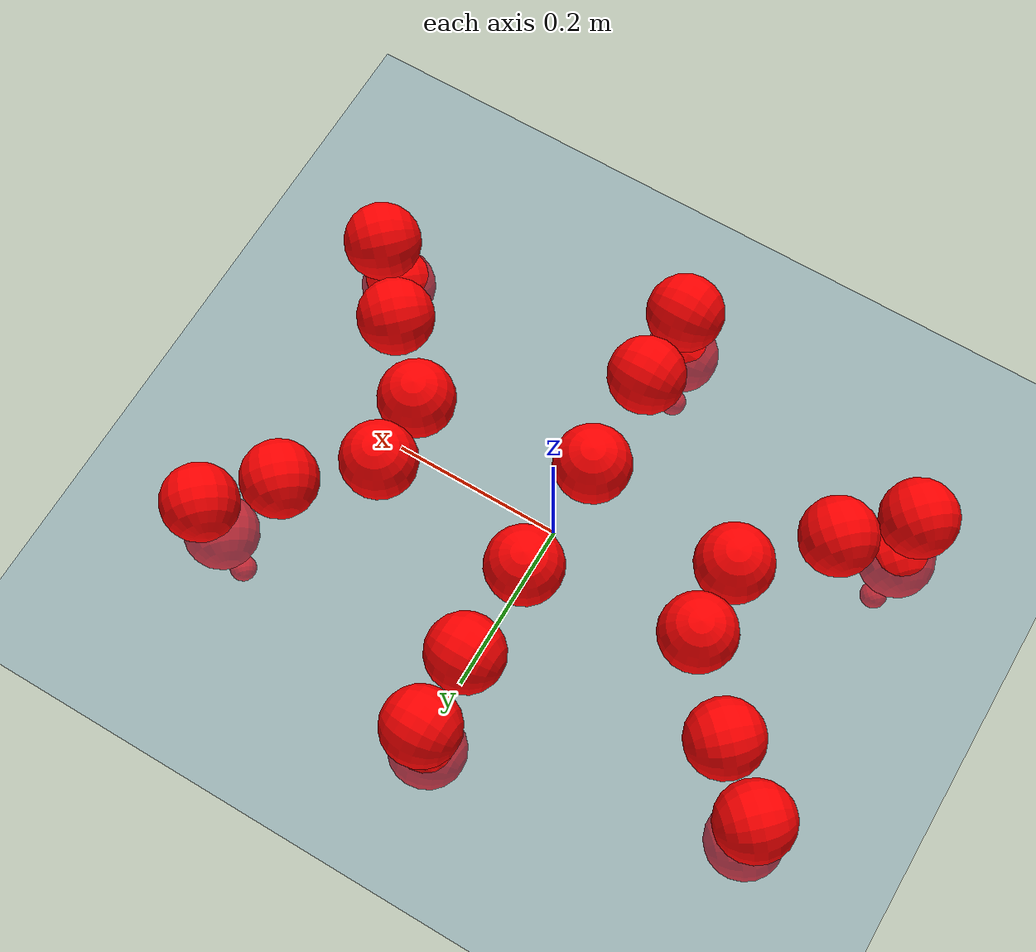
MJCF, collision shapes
<mujoco model="Golem">
  <compiler angle="radian" assetdir="assets" balanceinertia="true" inertiafromgeom="false"/>

  <option timestep="0.005" density="1.2" viscosity="2e-05"/>

  <size nkey="1"/>

  <visual>
    <quality shadowsize="8192"/>
    <map shadowclip="0.5"/>
  </visual>

  <default>
    <default class="/">
      <joint armature="0.01" damping="0.01" frictionloss="0.01"/>
      <geom contype="0" conaffinity="0" group="1" solref="-1000 -80"/>
      <site size="0.01 0.005 0.005" group="5"/>
      <general forcelimited="true" biastype="affine" gainprm="25" biasprm="0 -25 -0.5"/>
      <default class="visual">
        <geom type="mesh" group="2"/>
      </default>
      <default class="collision">
        <geom group="3"/>
      </default>
      <default class="foot">
        <geom size="0.01 0 0" condim="6" group="4" priority="1" solimp="0.015 1 0.01"/>
      </default>
      <default class="reward_collision_sphere">
        <geom group="5" rgba="1 0 0 1"/>
      </default>
    </default>
  </default>

  <asset>
    <texture type="skybox" colorspace="auto" name="//unnamed_texture_0" builtin="gradient" rgb1="0.95 0.95 0.95" rgb2="0.95 0.95 0.95" width="100" height="600"/>
    <texture type="2d" colorspace="auto" name="texplane" builtin="checker" rgb1="0.345 0.575 0.748" rgb2="0.345 0.575 0.748" markrgb="1 1 1" width="512" height="512"/>
    <material name="MatPlane" class="/" texture="texplane" texuniform="true" texrepeat="2 2" specular="0.9"/>
    <mesh name="body" class="/" file="body.stl" scale="0.001 0.001 0.001"/>
    <mesh name="coxa" class="/" file="coxa.stl" scale="0.001 0.001 0.001"/>
    <mesh name="femur" class="/" file="femur.stl" scale="0.001 0.001 0.001"/>
    <mesh name="tibia" class="/" file="tibia.stl" scale="0.001 0.001 0.001"/>
    <mesh name="tarsus" class="/" file="tarsus.stl" scale="0.001 0.001 0.001"/>
  </asset>

  <worldbody>
    <geom name="floor" class="/" size="100 100 0.125" type="plane" group="0" material="MatPlane"/>
    <light name="toplight_shadow" class="/" pos="0 0 5" dir="0.0990148 0.0990148 -0.990148" type="directional" ambient="0.04 0.04 0.04" diffuse="0.55 0.55 0.55" specular="0.12 0.12 0.12"/>
    <light name="toplight_fill" class="/" pos="0 0 5" dir="0.0990148 0.0990148 -0.990148" type="directional" castshadow="false" ambient="0.04 0.04 0.04" diffuse="0.3 0.3 0.3" specular="0.08 0.08 0.08"/>
    <body name="trunk" pos="-0.000196814 -0.00146898 0.0039512" quat="0.999996 0.000905064 -0.00156841 -0.00231092">
      <inertial pos="-0.00114558 0.00125251 -0.00552349" quat="0.999999 -0.00078904 0.00133096 -1.96544e-05" mass="5.53878" diaginertia="0.0315727 0.00393991 0.0282266"/>
      <joint name="//unnamed_joint_0" type="free"/>
      <geom name="//unnamed_geom_1" class="/" pos="0 0 0.0787894" quat="1 0 0 0" type="mesh" rgba="0.9 0.9 0.9 1" mesh="body"/>
      <site name="imu" class="/" pos="0.161429 -0.0312034 0.0775812" size="0.0110345"/>
      <camera name="track" class="/" pos="0 -1.6426 0" quat="0.707107 0.707107 0 0" mode="trackcom"/>
      <camera name="ego_camera" class="/" pos="0.163535 0 0.123108" quat="-0.5 -0.5 0.5 0.5"/>
      <body name="coxa_RR" pos="-0.221974 -0.0687928 0.0793109" quat="0.382677 0.00339597 0.00329577 -0.92387">
        <inertial pos="-0.00513941 -0.000148867 0.00296863" quat="0.99997 0.00683288 0.00331691 0.00141363" mass="0.244996" diaginertia="0.0313152 0.00337977 0.0246495"/>
        <joint name="coxa_joint_RR" class="/" pos="0 0 0" axis="0.00568571 0.00566715 -0.999968" range="-3.16778 3.14005" armature="0.0122211" damping="0.00709581" frictionloss="0.0105636"/>
        <geom name="//unnamed_geom_2" class="/" type="mesh" rgba="0.2 0.2 0.2 1" mesh="coxa"/>
        <geom name="//unnamed_geom_3" class="reward_collision_sphere" size="0.044138" pos="-0.0377389 0 0"/>
        <body name="femur_RR" pos="0.0784292 0.00198577 0.000235603" quat="0.501867 -0.500035 0.501388 0.496694">
          <inertial pos="-0.00017257 -0.00883129 -0.00263753" quat="0.999824 -0.0105925 0.0141069 0.00642468" mass="0.299465" diaginertia="0.0328167 0.00415718 0.0309748"/>
          <joint name="femur_joint_RR" class="/" pos="0 0 0" axis="-0.00334475 -0.00598935 -0.999976" stiffness="0.00562252" range="-3.14548 3.14569" armature="0.00775518" damping="0.0110461" frictionloss="0.0108246"/>
          <geom name="//unnamed_geom_4" class="/" type="mesh" rgba="0.9 0.9 0.9 1" mesh="femur"/>
          <geom name="//unnamed_geom_5" class="reward_collision_sphere" size="0.044138"/>
          <body name="tibia_RR" pos="0.00375761 -0.0906044 0.000206741" quat="-6.66035e-05 1 -0.000611693 0.000324674">
            <inertial pos="-0.000771566 -0.00792489 0.00125268" quat="0.999999 0.000863289 0.000229856 0.000917376" mass="0.27838" diaginertia="0.0325717 0.00388768 0.0292218"/>
            <joint name="tibia_joint_RR" class="/" pos="0 0 0" axis="-0.0266797 -0.0262695 0.999299" stiffness="0.0245206" range="-3.29856 3.15704" armature="0.0128195" damping="0.0354635" frictionloss="0.00566377"/>
            <geom name="//unnamed_geom_6" class="/" type="mesh" rgba="0.2 0.2 0.2 1" mesh="tibia"/>
            <geom name="//unnamed_geom_7" class="reward_collision_sphere" size="0.044138"/>
            <body name="tarsus_RR" pos="0.109597 -0.00529252 0.00813496" quat="0.999999 0.000100049 0.000518225 0.00123571">
              <inertial pos="0.0737902 -0.00104904 -0.00461503" quat="0.490284 0.503485 0.502735 0.50337" mass="0.292374" diaginertia="0.0348854 0.0040556 0.02705"/>
              <joint name="tarsus_joint_RR" class="/" pos="0 0 0" axis="-0.0116567 -0.0158839 0.999806" range="-3.08173 3.09939" armature="0.0113392" damping="0" frictionloss="0.0120188"/>
              <geom name="//unnamed_geom_8" class="/" type="mesh" rgba="0.9 0.9 0.9 1" mesh="tarsus"/>
              <geom name="foot_1" class="foot" size="0.0136466" pos="0.140892 0 0" quat="0 -0.707107 0 0.707107"/>
              <geom name="//unnamed_geom_10" class="reward_collision_sphere" size="0.044138"/>
              <geom name="//unnamed_geom_11" class="reward_collision_sphere" size="0.0165517" pos="0.135231 0 0"/>
              <site name="foot_1" class="foot" pos="0.140892 0 0" quat="0 -0.707107 0 0.707107" size="0.0110345"/>
            </body>
          </body>
        </body>
      </body>
      <body name="coxa_RM" pos="-0.00930462 -0.101256 0.0774096" quat="0.707208 2.12311e-05 5.61477e-05 -0.707006">
        <inertial pos="0.00206243 -0.00018753 0.00639168" quat="0.998975 0.0167353 -0.0238278 -0.0346638" mass="0.2446" diaginertia="0.0285838 0.00297199 0.0233516"/>
        <joint name="coxa_joint_RM" class="/" pos="0 0 0" axis="-0.0184193 0.0379885 -0.999108" stiffness="0.0103817" range="-3.12754 3.19091" armature="0.010867" damping="0.0198774" frictionloss="0.00878215"/>
        <geom name="//unnamed_geom_12" class="/" type="mesh" rgba="0.2 0.2 0.2 1" mesh="coxa"/>
        <geom name="//unnamed_geom_13" class="reward_collision_sphere" size="0.044138" pos="-0.0377389 0 0"/>
        <body name="femur_RM" pos="0.0819962 0.00121434 0.00283266" quat="0.500063 -0.499269 0.500978 0.499688">
          <inertial pos="0.000955169 -0.00489428 0.0011231" quat="0.999972 -0.000693185 -0.00385746 -0.006363" mass="0.260339" diaginertia="0.0341747 0.00366585 0.0291506"/>
          <joint name="femur_joint_RM" class="/" pos="0 0 0" axis="0.00177108 -0.00443519 -0.999989" stiffness="0.0277347" range="-3.25813 3.09258" armature="0.00843621" damping="0.0103505" frictionloss="0.0071163"/>
          <geom name="//unnamed_geom_14" class="/" type="mesh" rgba="0.9 0.9 0.9 1" mesh="femur"/>
          <geom name="//unnamed_geom_15" class="reward_collision_sphere" size="0.044138"/>
          <body name="tibia_RM" pos="-0.00133102 -0.0875854 0.000507074" quat="0.00116903 0.999999 -2.01893e-05 -4.06256e-05">
            <inertial pos="0.00230018 0.000105189 -0.00539553" quat="0.999984 -0.00239463 -0.00244538 -0.0046122" mass="0.243428" diaginertia="0.0309029 0.00371892 0.0292267"/>
            <joint name="tibia_joint_RM" class="/" pos="0 0 0" axis="-0.0354082 -0.0155532 0.999252" range="-3.16644 3.05083" armature="0.015512" damping="0.0140043" frictionloss="0.00673114"/>
            <geom name="//unnamed_geom_16" class="/" type="mesh" rgba="0.2 0.2 0.2 1" mesh="tibia"/>
            <geom name="//unnamed_geom_17" class="reward_collision_sphere" size="0.044138"/>
            <body name="tarsus_RM" pos="0.120489 0.00721045 0.000884" quat="0.999997 0.000155205 -0.000317295 -0.00232041">
              <inertial pos="0.0771 -0.000905086 0.00147504" quat="0.498492 0.497329 0.497503 0.506615" mass="0.226708" diaginertia="0.0277496 0.00336929 0.0255768"/>
              <joint name="tarsus_joint_RM" class="/" pos="0 0 0" axis="-0.00475756 0.00303632 0.999984" range="-3.1558 3.11806" armature="0.0120823" damping="0" frictionloss="0.0114614"/>
              <geom name="//unnamed_geom_18" class="/" type="mesh" rgba="0.9 0.9 0.9 1" mesh="tarsus"/>
              <geom name="foot_2" class="foot" size="0.0124989" pos="0.140892 0 0" quat="0 -0.707107 0 0.707107"/>
              <geom name="//unnamed_geom_20" class="reward_collision_sphere" size="0.044138"/>
              <geom name="//unnamed_geom_21" class="reward_collision_sphere" size="0.0165517" pos="0.135231 0 0"/>
              <site name="foot_2" class="foot" pos="0.140892 0 0" quat="0 -0.707107 0 0.707107" size="0.0110345"/>
            </body>
          </body>
        </body>
      </body>
      <body name="coxa_RF" pos="0.222931 -0.0594005 0.0730727" quat="0.923874 0.000385201 -0.000364952 -0.382696">
        <inertial pos="0.00813069 0.00237142 0.00534158" quat="0.999831 -0.0183618 -0.000494236 0.000539143" mass="0.260854" diaginertia="0.0273626 0.00334192 0.0242337"/>
        <joint name="coxa_joint_RF" class="/" pos="0 0 0" axis="-0.00541254 -0.00242667 -0.999982" stiffness="0.0296196" range="-3.09618 3.21435" armature="0.010324" damping="0" frictionloss="0.00702396"/>
        <geom name="//unnamed_geom_22" class="/" type="mesh" rgba="0.2 0.2 0.2 1" mesh="coxa"/>
        <geom name="//unnamed_geom_23" class="reward_collision_sphere" size="0.044138" pos="-0.0377389 0 0"/>
        <body name="femur_RF" pos="0.0670501 0.000738136 -0.00355514" quat="0.498857 -0.502545 0.499207 0.499382">
          <inertial pos="0.00166744 0.00143819 -0.00055672" quat="0.999903 0.008808 0.0102772 -0.00320047" mass="0.263253" diaginertia="0.0335815 0.00381907 0.0296982"/>
          <joint name="femur_joint_RF" class="/" pos="0 0 0" axis="0.00177254 0.00171012 -0.999997" range="-3.17685 3.13774" armature="0.0116784" damping="0.0166477" frictionloss="0.0120496"/>
          <geom name="//unnamed_geom_24" class="/" type="mesh" rgba="0.9 0.9 0.9 1" mesh="femur"/>
          <geom name="//unnamed_geom_25" class="reward_collision_sphere" size="0.044138"/>
          <body name="tibia_RF" pos="-0.00981721 -0.0906182 -0.00611365" quat="0.000323235 1 -0.000271738 -0.000199296">
            <inertial pos="-0.00115881 0.00755045 0.00574167" quat="0.999368 0.00889808 -0.0157714 0.030595" mass="0.294901" diaginertia="0.0355911 0.00413158 0.0282237"/>
            <joint name="tibia_joint_RF" class="/" pos="0 0 0" axis="0.0354276 -0.00278323 0.999368" stiffness="0.0493429" range="-3.09424 3.17258" armature="0.0122072" damping="0.0384686" frictionloss="0.0128852"/>
            <geom name="//unnamed_geom_26" class="/" type="mesh" rgba="0.2 0.2 0.2 1" mesh="tibia"/>
            <geom name="//unnamed_geom_27" class="reward_collision_sphere" size="0.044138"/>
            <body name="tarsus_RF" pos="0.1092 0.000154072 0.00851462" quat="1 -1.34719e-05 8.90358e-06 8.48065e-07">
              <inertial pos="0.0763545 0.0013995 -0.00217975" quat="0.501692 0.499542 0.501433 0.497321" mass="0.282353" diaginertia="0.0330505 0.00412723 0.0295569"/>
              <joint name="tarsus_joint_RF" class="/" pos="0 0 0" axis="-0.0451285 -0.00773451 0.998951" range="-3.17278 3.11924" armature="0.0113811" damping="0.0101882" frictionloss="0.00937107"/>
              <geom name="//unnamed_geom_28" class="/" type="mesh" rgba="0.9 0.9 0.9 1" mesh="tarsus"/>
              <geom name="foot_3" class="foot" size="0.010195" pos="0.140892 0 0" quat="0 -0.707107 0 0.707107"/>
              <geom name="//unnamed_geom_30" class="reward_collision_sphere" size="0.044138"/>
              <geom name="//unnamed_geom_31" class="reward_collision_sphere" size="0.0165517" pos="0.135231 0 0"/>
              <site name="foot_3" class="foot" pos="0.140892 0 0" quat="0 -0.707107 0 0.707107" size="0.0110345"/>
            </body>
          </body>
        </body>
      </body>
      <body name="coxa_LR" pos="-0.225188 0.0679121 0.0707675" quat="0.383506 -0.00289295 -0.00132724 0.923533">
        <inertial pos="0.00231374 -0.00595448 0.00660554" quat="0.999985 0.00511366 -0.00110378 0.00156969" mass="0.265967" diaginertia="0.0320665 0.00399632 0.0288862"/>
        <joint name="coxa_joint_LR" class="/" pos="0 0 0" axis="-0.00138461 -0.0262008 -0.999656" range="-3.10273 2.99116" armature="0.0106856" damping="0.0205175" frictionloss="0.00839582"/>
        <geom name="//unnamed_geom_32" class="/" type="mesh" rgba="0.2 0.2 0.2 1" mesh="coxa"/>
        <geom name="//unnamed_geom_33" class="reward_collision_sphere" size="0.044138" pos="-0.0377389 0 0"/>
        <body name="femur_LR" pos="0.0764736 -0.00327245 -0.00438734" quat="0.500341 -0.499767 0.499642 0.500249">
          <inertial pos="0.0019187 -0.00470947 -0.000354447" quat="0.999156 0.017068 -0.0176066 -0.0329489" mass="0.272763" diaginertia="0.0291974 0.00371191 0.0294394"/>
          <joint name="femur_joint_LR" class="/" pos="0 0 0" axis="-0.0242 -0.044859 0.9987" range="-3.09701 3.11851" armature="0.00612272" damping="0.0024818" frictionloss="0.0119311"/>
          <geom name="//unnamed_geom_34" class="/" type="mesh" rgba="0.9 0.9 0.9 1" mesh="femur"/>
          <geom name="//unnamed_geom_35" class="reward_collision_sphere" size="0.044138"/>
          <body name="tibia_LR" pos="-0.0064401 -0.0894962 0.00496465" quat="-0.000191128 1 0.000210051 -4.17008e-05">
            <inertial pos="0.00247986 -0.000554437 -0.0056111" quat="0.999748 0.0175917 0.00134072 0.0138933" mass="0.247082" diaginertia="0.0322718 0.00368606 0.029041"/>
            <joint name="tibia_joint_LR" class="/" pos="0 0 0" axis="-0.00961735 0.000299484 -0.999954" stiffness="0.0067713" range="-3.30443 3.04155" armature="0.0144573" damping="0.017886" frictionloss="0.0109005"/>
            <geom name="//unnamed_geom_36" class="/" type="mesh" rgba="0.2 0.2 0.2 1" mesh="tibia"/>
            <geom name="//unnamed_geom_37" class="reward_collision_sphere" size="0.044138"/>
            <body name="tarsus_LR" pos="0.11223 0.0029634 -0.00132481" quat="1 6.59215e-05 0.000102998 -0.000300744">
              <inertial pos="0.0745793 0.00683383 0.00129356" quat="0.502428 0.498738 0.499204 0.499622" mass="0.295736" diaginertia="0.0315565 0.00330424 0.0274722"/>
              <joint name="tarsus_joint_LR" class="/" pos="0 0 0" axis="0.00305213 0.0041363 -0.999987" range="-3.16027 3.06896" armature="0.0106013" damping="0.0188785" frictionloss="0.0128757"/>
              <geom name="//unnamed_geom_38" class="/" type="mesh" rgba="0.9 0.9 0.9 1" mesh="tarsus"/>
              <geom name="foot_4" class="foot" size="0.00966546" pos="0.140892 0 0" quat="0.707107 0 -0.707107 0"/>
              <geom name="//unnamed_geom_40" class="reward_collision_sphere" size="0.044138"/>
              <geom name="//unnamed_geom_41" class="reward_collision_sphere" size="0.0165517" pos="0.135231 0 0"/>
              <site name="foot_4" class="foot" pos="0.140892 0 0" quat="0.707107 0 -0.707107 0" size="0.0110345"/>
            </body>
          </body>
        </body>
      </body>
      <body name="coxa_LM" pos="-0.00586984 0.110823 0.0786657" quat="0.70707 0.000301258 7.93538e-06 0.707143">
        <inertial pos="0.00132034 0.00139004 0.00798546" quat="0.99998 0.00488023 -0.00407283 0.00068827" mass="0.273513" diaginertia="0.0308315 0.00369478 0.0283337"/>
        <joint name="coxa_joint_LM" class="/" pos="0 0 0" axis="-0.0136864 -0.00219842 -0.999904" stiffness="0.00836006" range="-3.16715 3.09661" armature="0.0107651" damping="0.0336944" frictionloss="0.0112823"/>
        <geom name="//unnamed_geom_42" class="/" type="mesh" rgba="0.2 0.2 0.2 1" mesh="coxa"/>
        <geom name="//unnamed_geom_43" class="reward_collision_sphere" size="0.044138" pos="-0.0377389 0 0"/>
        <body name="femur_LM" pos="0.0754545 -0.00294884 0.000717075" quat="0.498918 -0.500624 0.500361 0.500095">
          <inertial pos="0.00491276 -0.00130174 0.00941387" quat="0.999671 -0.00248923 -0.0189955 -0.0170453" mass="0.279861" diaginertia="0.0321368 0.00391133 0.0296271"/>
          <joint name="femur_joint_LM" class="/" pos="0 0 0" axis="-0.0102145 0.0103062 0.999895" range="-3.12893 3.31954" armature="0.012788" damping="0.0360282" frictionloss="0.0144973"/>
          <geom name="//unnamed_geom_44" class="/" type="mesh" rgba="0.9 0.9 0.9 1" mesh="femur"/>
          <geom name="//unnamed_geom_45" class="reward_collision_sphere" size="0.044138"/>
          <body name="tibia_LM" pos="0.000842521 -0.0887463 0.00170504" quat="0.000770893 0.999999 -0.000391686 -0.000726127">
            <inertial pos="-0.00174508 0.00172757 -0.000112997" quat="0.999975 -0.00435804 0.00434021 0.00354462" mass="0.290413" diaginertia="0.0351199 0.00416421 0.0315853"/>
            <joint name="tibia_joint_LM" class="/" pos="0 0 0" axis="0.0240728 -0.019845 -0.999513" stiffness="0.00160252" range="-3.25905 3.19021" armature="0.00560369" damping="0.0450097" frictionloss="0.0077992"/>
            <geom name="//unnamed_geom_46" class="/" type="mesh" rgba="0.2 0.2 0.2 1" mesh="tibia"/>
            <geom name="//unnamed_geom_47" class="reward_collision_sphere" size="0.044138"/>
            <body name="tarsus_LM" pos="0.113773 0.000913366 0.000663444" quat="1 0.00027942 0.000597184 -3.52096e-05">
              <inertial pos="0.0772715 0.00486314 0.00154218" quat="0.501096 0.503348 0.505842 0.489559" mass="0.295274" diaginertia="0.0351609 0.00471495 0.0319941"/>
              <joint name="tarsus_joint_LM" class="/" pos="0 0 0" axis="-0.0113195 0.0116049 -0.999869" range="-3.12673 3.14655" armature="0.0106481" damping="0" frictionloss="0.00613937"/>
              <geom name="//unnamed_geom_48" class="/" type="mesh" rgba="0.9 0.9 0.9 1" mesh="tarsus"/>
              <geom name="foot_5" class="foot" size="0.00977953" pos="0.140892 0 0" quat="0.707107 0 -0.707107 0"/>
              <geom name="//unnamed_geom_50" class="reward_collision_sphere" size="0.044138"/>
              <geom name="//unnamed_geom_51" class="reward_collision_sphere" size="0.0165517" pos="0.135231 0 0"/>
              <site name="foot_5" class="foot" pos="0.140892 0 0" quat="0.707107 0 -0.707107 0" size="0.0110345"/>
            </body>
          </body>
        </body>
      </body>
      <body name="coxa_LF" pos="0.220316 0.0751078 0.0693442" quat="0.923719 0.000191601 -8.72493e-05 0.383071">
        <inertial pos="0.00788141 0.00954643 0.00459334" quat="1 -9.35551e-07 5.99261e-06 -5.54322e-07" mass="0.282154" diaginertia="0.0338189 0.00446977 0.0282507"/>
        <joint name="coxa_joint_LF" class="/" pos="0 0 0" axis="-0.0262293 -0.0291975 -0.999229" stiffness="0.00154429" range="-3.07906 3.13088" armature="0.0109457" damping="0.00948244" frictionloss="0.0139201"/>
        <geom name="//unnamed_geom_52" class="/" type="mesh" rgba="0.2 0.2 0.2 1" mesh="coxa"/>
        <geom name="//unnamed_geom_53" class="reward_collision_sphere" size="0.044138" pos="-0.0377389 0 0"/>
        <body name="femur_LF" pos="0.0715146 -0.00721324 -0.00677579" quat="0.499112 -0.498408 0.50083 0.501643">
          <inertial pos="-0.000296849 0.00322178 -0.000251749" quat="0.999995 -0.001963 0.00235545 0.000601242" mass="0.291043" diaginertia="0.0377821 0.00403183 0.0308107"/>
          <joint name="femur_joint_LF" class="/" pos="0 0 0" axis="-0.0368966 -0.00735606 0.999292" stiffness="0.00721128" range="-3.09804 3.02912" armature="0.0117235" damping="0.0140749" frictionloss="0.0101399"/>
          <geom name="//unnamed_geom_54" class="/" type="mesh" rgba="0.9 0.9 0.9 1" mesh="femur"/>
          <geom name="//unnamed_geom_55" class="reward_collision_sphere" size="0.044138"/>
          <body name="tibia_LF" pos="0.00849122 -0.0897142 0.00171846" quat="0.00121093 0.999999 -0.000476246 -0.000138109">
            <inertial pos="-0.0035324 -0.00722332 0.00260718" quat="0.999948 -0.00526007 0.00873631 -8.94626e-06" mass="0.254428" diaginertia="0.0329857 0.0036222 0.0292451"/>
            <joint name="tibia_joint_LF" class="/" pos="0 0 0" axis="0.0167089 0.0110286 -0.9998" stiffness="0.0436443" range="-3.09818 3.2507" armature="0.0114264" damping="0.0327978" frictionloss="0.01116"/>
            <geom name="//unnamed_geom_56" class="/" type="mesh" rgba="0.2 0.2 0.2 1" mesh="tibia"/>
            <geom name="//unnamed_geom_57" class="reward_collision_sphere" size="0.044138"/>
            <body name="tarsus_LF" pos="0.112797 -0.00256783 0.00519556" quat="1 2.30183e-05 4.24245e-05 0.000170935">
              <inertial pos="0.085212 0.00105609 -0.000312591" quat="0.514824 0.481258 0.531394 0.470071" mass="0.273711" diaginertia="0.032364 0.00375329 0.0276495"/>
              <joint name="tarsus_joint_LF" class="/" pos="0 0 0" axis="-0.050934 0.00326885 -0.998697" stiffness="0.000293962" range="-3.18395 3.23345" armature="0.0111895" damping="0.0347817" frictionloss="0.0121034"/>
              <geom name="//unnamed_geom_58" class="/" type="mesh" rgba="0.9 0.9 0.9 1" mesh="tarsus"/>
              <geom name="foot_6" class="foot" size="0.00990003" pos="0.140892 0 0" quat="0.707107 0 -0.707107 0"/>
              <geom name="//unnamed_geom_60" class="reward_collision_sphere" size="0.044138"/>
              <geom name="//unnamed_geom_61" class="reward_collision_sphere" size="0.0165517" pos="0.135231 0 0"/>
              <site name="foot_6" class="foot" pos="0.140892 0 0" quat="0.707107 0 -0.707107 0" size="0.0110345"/>
            </body>
          </body>
        </body>
      </body>
    </body>
  </worldbody>

  <contact>
    <pair class="/" geom1="floor" geom2="foot_1" name="//unnamed_contact_0"/>
    <pair class="/" geom1="floor" geom2="foot_2" name="//unnamed_contact_1"/>
    <pair class="/" geom1="floor" geom2="foot_3" name="//unnamed_contact_2"/>
    <pair class="/" geom1="floor" geom2="foot_4" name="//unnamed_contact_3"/>
    <pair class="/" geom1="floor" geom2="foot_5" name="//unnamed_contact_4"/>
    <pair class="/" geom1="floor" geom2="foot_6" name="//unnamed_contact_5"/>
  </contact>

  <actuator>
    <general name="coxa_joint_RR" class="/" joint="coxa_joint_RR" forcerange="-8.23972 8.23972" gainprm="25.2957" biasprm="0 -25.2957 -0.535553"/>
    <general name="femur_joint_RR" class="/" joint="femur_joint_RR" forcerange="-8.14403 8.14403" gainprm="25.2957" biasprm="0 -25.2957 -0.535553"/>
    <general name="tibia_joint_RR" class="/" joint="tibia_joint_RR" forcerange="-7.92095 7.92095" gainprm="25.2957" biasprm="0 -25.2957 -0.535553"/>
    <general name="tarsus_joint_RR" class="/" joint="tarsus_joint_RR" forcerange="-6.2834 6.2834" gainprm="25.2957" biasprm="0 -25.2957 -0.535553"/>
    <general name="coxa_joint_RM" class="/" joint="coxa_joint_RM" forcerange="-8.38773 8.38773" gainprm="25.2957" biasprm="0 -25.2957 -0.535553"/>
    <general name="femur_joint_RM" class="/" joint="femur_joint_RM" forcerange="-6.25275 6.25275" gainprm="25.2957" biasprm="0 -25.2957 -0.535553"/>
    <general name="tibia_joint_RM" class="/" joint="tibia_joint_RM" forcerange="-8.0623 8.0623" gainprm="25.2957" biasprm="0 -25.2957 -0.535553"/>
    <general name="tarsus_joint_RM" class="/" joint="tarsus_joint_RM" forcerange="-7.61017 7.61017" gainprm="25.2957" biasprm="0 -25.2957 -0.535553"/>
    <general name="coxa_joint_RF" class="/" joint="coxa_joint_RF" forcerange="-9.81776 9.81776" gainprm="25.2957" biasprm="0 -25.2957 -0.535553"/>
    <general name="femur_joint_RF" class="/" joint="femur_joint_RF" forcerange="-8.57079 8.57079" gainprm="25.2957" biasprm="0 -25.2957 -0.535553"/>
    <general name="tibia_joint_RF" class="/" joint="tibia_joint_RF" forcerange="-7.86827 7.86827" gainprm="25.2957" biasprm="0 -25.2957 -0.535553"/>
    <general name="tarsus_joint_RF" class="/" joint="tarsus_joint_RF" forcerange="-8.50804 8.50804" gainprm="25.2957" biasprm="0 -25.2957 -0.535553"/>
    <general name="coxa_joint_LR" class="/" joint="coxa_joint_LR" forcerange="-8.32199 8.32199" gainprm="25.2957" biasprm="0 -25.2957 -0.535553"/>
    <general name="femur_joint_LR" class="/" joint="femur_joint_LR" forcerange="-8.24624 8.24624" gainprm="25.2957" biasprm="0 -25.2957 -0.535553"/>
    <general name="tibia_joint_LR" class="/" joint="tibia_joint_LR" forcerange="-7.45981 7.45981" gainprm="25.2957" biasprm="0 -25.2957 -0.535553"/>
    <general name="tarsus_joint_LR" class="/" joint="tarsus_joint_LR" forcerange="-8.64627 8.64627" gainprm="25.2957" biasprm="0 -25.2957 -0.535553"/>
    <general name="coxa_joint_LM" class="/" joint="coxa_joint_LM" forcerange="-7.77146 7.77146" gainprm="25.2957" biasprm="0 -25.2957 -0.535553"/>
    <general name="femur_joint_LM" class="/" joint="femur_joint_LM" forcerange="-7.6837 7.6837" gainprm="25.2957" biasprm="0 -25.2957 -0.535553"/>
    <general name="tibia_joint_LM" class="/" joint="tibia_joint_LM" forcerange="-7.98381 7.98381" gainprm="25.2957" biasprm="0 -25.2957 -0.535553"/>
    <general name="tarsus_joint_LM" class="/" joint="tarsus_joint_LM" forcerange="-7.67372 7.67372" gainprm="25.2957" biasprm="0 -25.2957 -0.535553"/>
    <general name="coxa_joint_LF" class="/" joint="coxa_joint_LF" forcerange="-8.83777 8.83777" gainprm="25.2957" biasprm="0 -25.2957 -0.535553"/>
    <general name="femur_joint_LF" class="/" joint="femur_joint_LF" forcerange="-7.89912 7.89912" gainprm="25.2957" biasprm="0 -25.2957 -0.535553"/>
    <general name="tibia_joint_LF" class="/" joint="tibia_joint_LF" forcerange="-8.2398 8.2398" gainprm="25.2957" biasprm="0 -25.2957 -0.535553"/>
    <general name="tarsus_joint_LF" class="/" joint="tarsus_joint_LF" forcerange="-8.03822 8.03822" gainprm="25.2957" biasprm="0 -25.2957 -0.535553"/>
  </actuator>

  <sensor>
    <gyro site="imu" name="imu_angular_velocity"/>
    <velocimeter site="imu" name="imu_linear_velocity"/>
    <framelinvel objtype="site" objname="foot_1" name="foot_1_global_linear_velocity"/>
    <framelinvel objtype="site" objname="foot_2" name="foot_2_global_linear_velocity"/>
    <framelinvel objtype="site" objname="foot_3" name="foot_3_global_linear_velocity"/>
    <framelinvel objtype="site" objname="foot_4" name="foot_4_global_linear_velocity"/>
    <framelinvel objtype="site" objname="foot_5" name="foot_5_global_linear_velocity"/>
    <framelinvel objtype="site" objname="foot_6" name="foot_6_global_linear_velocity"/>
  </sensor>

  <keyframe>
    <key name="home" qpos="0 0 0.1457 1 0 0 0 0 0 0 0 0 0 0 0 0 0 0 0 0 0 0 0 0 0 0 0 0 0 0 0"/>
  </keyframe>
</mujoco>
